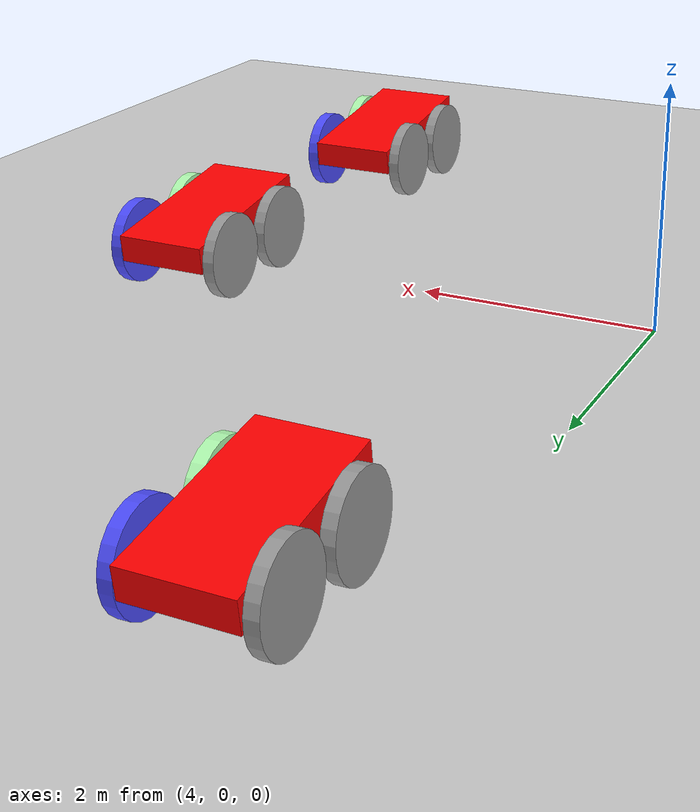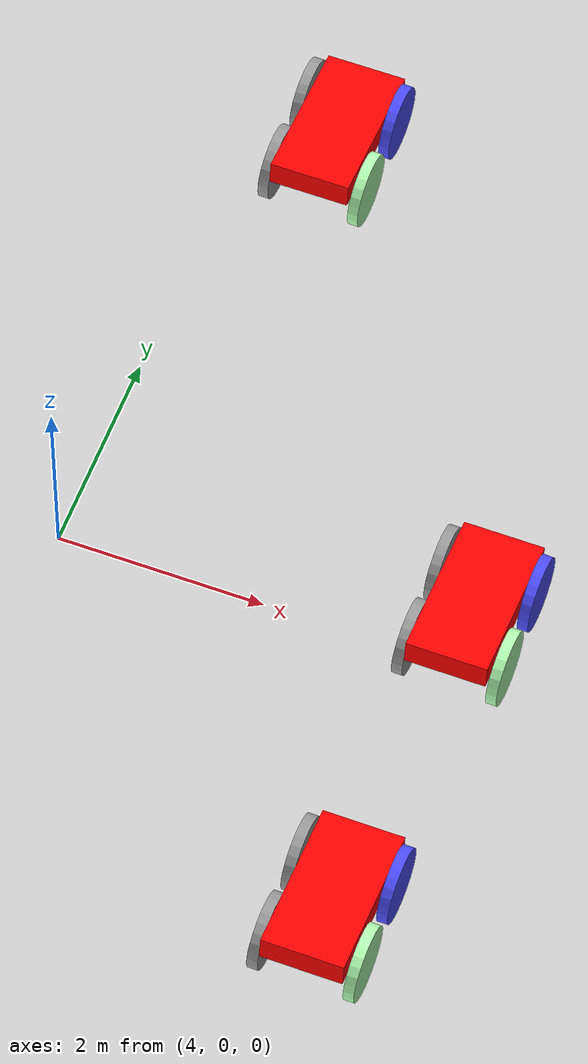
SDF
<sdf version="1.6">
 <world name="default">
  <model name="ground_plane">
   <static>1</static>
   <link name="link">
    <collision name="collision">
     <geometry><plane><normal>0 0 1</normal><size>100 100</size></plane></geometry>
     <surface><friction><ode><mu>100</mu><mu2>50</mu2></ode></friction></surface>
    </collision>
    <visual name="visual">
     <cast_shadows>0</cast_shadows>
     <geometry><plane><normal>0 0 1</normal><size>100 100</size></plane></geometry>
     <material>
      <script><uri>file://media/materials/scripts/gazebo.material</uri><name>Gazebo/Grey</name></script>
     </material>
    </visual>
   </link>
  </model>
  <model name="my_car2">
   <link name="link_0">
    <inertial>
     <mass>0.276053</mass>
     <inertia>
      <ixx>0.0553179</ixx>
      <ixy>0</ixy>
      <ixz>0</ixz>
      <iyy>0.0149267</iyy>
      <iyz>0</iyz>
      <izz>0.0677343</izz>
     </inertia>
    </inertial>
    <pose>0.341303 -0.303641 0.194258 0 -0 0</pose>
    <visual name="visual">
     <geometry><box><size>0.770868 1.533 0.233602</size></box></geometry>
     <material>
      <lighting>1</lighting>
      <script><uri>file://media/materials/scripts/gazebo.material</uri><name>Gazebo/Grey</name></script>
      <emissive>1 0 0 1</emissive>
      <diffuse>1 0 0 0</diffuse>
      <shader type="vertex"><normal_map>__default__</normal_map></shader>
      <ambient>0.3 0.3 0.3 1</ambient>
      <specular>1 0.01 0.01 1</specular>
     </material>
    </visual>
    <collision name="collision">
     <geometry><box><size>0.770868 1.533 0.233602</size></box></geometry>
     <surface>
      <friction>
       <ode><mu>1</mu><mu2>1</mu2><fdir1>0 0 0</fdir1><slip1>0</slip1><slip2>0</slip2></ode>
       <torsional>
        <coefficient>1</coefficient>
        <patch_radius>0</patch_radius>
        <surface_radius>0</surface_radius>
        <use_patch_radius>1</use_patch_radius>
        <ode><slip>0</slip></ode>
       </torsional>
      </friction>
      <bounce><restitution_coefficient>0</restitution_coefficient><threshold>1e+06</threshold></bounce>
      <contact>
       <collide_without_contact>0</collide_without_contact>
       <collide_without_contact_bitmask>1</collide_without_contact_bitmask>
       <collide_bitmask>1</collide_bitmask>
       <ode>
        <soft_cfm>0</soft_cfm>
        <soft_erp>0.2</soft_erp>
        <kp>1e+13</kp>
        <kd>1</kd>
        <max_vel>0.01</max_vel>
        <min_depth>0</min_depth>
       </ode>
       <bullet>
        <split_impulse>1</split_impulse>
        <split_impulse_penetration_threshold>-0.01</split_impulse_penetration_threshold>
        <soft_cfm>0</soft_cfm>
        <soft_erp>0.2</soft_erp>
        <kp>1e+13</kp>
        <kd>1</kd>
       </bullet>
      </contact>
     </surface>
    </collision>
   </link>
   <link name="link_1_clone">
    <inertial>
     <mass>0.0516188</mass>
     <inertia>
      <ixx>0.00169164</ixx>
      <ixy>0</ixy>
      <ixz>0</ixz>
      <iyy>0.00169164</iyy>
      <iyz>0</iyz>
      <izz>0.00329539</izz>
     </inertia>
    </inertial>
    <pose>0.787793 0.105537 0.097767 3.14159 1.54127 3.14159</pose>
    <visual name="visual">
     <geometry><cylinder><radius>0.357323</radius><length>0.101057</length></cylinder></geometry>
     <material>
      <lighting>1</lighting>
      <script><uri>file://media/materials/scripts/gazebo.material</uri><name>Gazebo/Grey</name></script>
      <shader type="vertex"><normal_map>__default__</normal_map></shader>
      <ambient>0.3 0.3 1 1</ambient>
      <diffuse>0.7 0.7 0.7 1</diffuse>
      <specular>0.01 0.01 0.01 1</specular>
      <emissive>0 0 0 1</emissive>
     </material>
    </visual>
    <collision name="collision">
     <geometry><cylinder><radius>0.357323</radius><length>0.101057</length></cylinder></geometry>
     <surface>
      <friction>
       <ode><mu>1</mu><mu2>1</mu2><fdir1>0 0 0</fdir1><slip1>0</slip1><slip2>0</slip2></ode>
       <torsional>
        <coefficient>1</coefficient>
        <patch_radius>0</patch_radius>
        <surface_radius>0</surface_radius>
        <use_patch_radius>1</use_patch_radius>
        <ode><slip>0</slip></ode>
       </torsional>
      </friction>
      <bounce><restitution_coefficient>0</restitution_coefficient><threshold>1e+06</threshold></bounce>
      <contact>
       <collide_without_contact>0</collide_without_contact>
       <collide_without_contact_bitmask>1</collide_without_contact_bitmask>
       <collide_bitmask>1</collide_bitmask>
       <ode>
        <soft_cfm>0</soft_cfm>
        <soft_erp>0.2</soft_erp>
        <kp>1e+13</kp>
        <kd>1</kd>
        <max_vel>0.01</max_vel>
        <min_depth>0</min_depth>
       </ode>
       <bullet>
        <split_impulse>1</split_impulse>
        <split_impulse_penetration_threshold>-0.01</split_impulse_penetration_threshold>
        <soft_cfm>0</soft_cfm>
        <soft_erp>0.2</soft_erp>
        <kp>1e+13</kp>
        <kd>1</kd>
       </bullet>
      </contact>
     </surface>
    </collision>
   </link>
   <link name="link_1_clone_0">
    <inertial>
     <mass>0.0516188</mass>
     <inertia>
      <ixx>0.00169164</ixx>
      <ixy>0</ixy>
      <ixz>0</ixz>
      <iyy>0.00169164</iyy>
      <iyz>0</iyz>
      <izz>0.00329539</izz>
     </inertia>
    </inertial>
    <pose>-0.105186 -0.712819 -0.024401 3.14159 1.54127 3.14159</pose>
    <visual name="visual">
     <geometry><cylinder><radius>0.357323</radius><length>0.101057</length></cylinder></geometry>
     <material>
      <lighting>1</lighting>
      <script><uri>file://media/materials/scripts/gazebo.material</uri><name>Gazebo/Grey</name></script>
      <shader type="vertex"><normal_map>__default__</normal_map></shader>
      <ambient>0.3 0.3 0.3 1</ambient>
      <diffuse>0.7 0.7 0.7 1</diffuse>
      <specular>0.01 0.01 1 1</specular>
      <emissive>0 0 0 1</emissive>
     </material>
    </visual>
    <collision name="collision">
     <geometry><cylinder><radius>0.357323</radius><length>0.101057</length></cylinder></geometry>
     <surface>
      <friction>
       <ode><mu>1</mu><mu2>1</mu2><fdir1>0 0 0</fdir1><slip1>0</slip1><slip2>0</slip2></ode>
       <torsional>
        <coefficient>1</coefficient>
        <patch_radius>0</patch_radius>
        <surface_radius>0</surface_radius>
        <use_patch_radius>1</use_patch_radius>
        <ode><slip>0</slip></ode>
       </torsional>
      </friction>
      <bounce><restitution_coefficient>0</restitution_coefficient><threshold>1e+06</threshold></bounce>
      <contact>
       <collide_without_contact>0</collide_without_contact>
       <collide_without_contact_bitmask>1</collide_without_contact_bitmask>
       <collide_bitmask>1</collide_bitmask>
       <ode>
        <soft_cfm>0</soft_cfm>
        <soft_erp>0.2</soft_erp>
        <kp>1e+13</kp>
        <kd>1</kd>
        <max_vel>0.01</max_vel>
        <min_depth>0</min_depth>
       </ode>
       <bullet>
        <split_impulse>1</split_impulse>
        <split_impulse_penetration_threshold>-0.01</split_impulse_penetration_threshold>
        <soft_cfm>0</soft_cfm>
        <soft_erp>0.2</soft_erp>
        <kp>1e+13</kp>
        <kd>1</kd>
       </bullet>
      </contact>
     </surface>
    </collision>
   </link>
   <link name="link_1_clone_1">
    <inertial>
     <mass>0.0516188</mass>
     <inertia>
      <ixx>0.00169164</ixx>
      <ixy>0</ixy>
      <ixz>0</ixz>
      <iyy>0.00169164</iyy>
      <iyz>0</iyz>
      <izz>0.00329539</izz>
     </inertia>
    </inertial>
    <pose>0.787793 -0.712819 -0.024401 3.14159 1.54127 3.14159</pose>
    <visual name="visual">
     <geometry><cylinder><radius>0.357323</radius><length>0.101057</length></cylinder></geometry>
     <material>
      <lighting>1</lighting>
      <script><uri>file://media/materials/scripts/gazebo.material</uri><name>Gazebo/Grey</name></script>
      <shader type="vertex"><normal_map>__default__</normal_map></shader>
      <ambient>0.3 1 0.3 1</ambient>
      <diffuse>0.7 1 0.7 1</diffuse>
      <specular>0.01 1 0.01 1</specular>
      <emissive>0 1 0 1</emissive>
     </material>
    </visual>
    <collision name="collision">
     <geometry><cylinder><radius>0.357323</radius><length>0.101057</length></cylinder></geometry>
     <surface>
      <friction>
       <ode><mu>1</mu><mu2>1</mu2><fdir1>0 0 0</fdir1><slip1>0</slip1><slip2>0</slip2></ode>
       <torsional>
        <coefficient>1</coefficient>
        <patch_radius>0</patch_radius>
        <surface_radius>0</surface_radius>
        <use_patch_radius>1</use_patch_radius>
        <ode><slip>0</slip></ode>
       </torsional>
      </friction>
      <bounce><restitution_coefficient>0</restitution_coefficient><threshold>1e+06</threshold></bounce>
      <contact>
       <collide_without_contact>0</collide_without_contact>
       <collide_without_contact_bitmask>1</collide_without_contact_bitmask>
       <collide_bitmask>1</collide_bitmask>
       <ode>
        <soft_cfm>0</soft_cfm>
        <soft_erp>0.2</soft_erp>
        <kp>1e+13</kp>
        <kd>1</kd>
        <max_vel>0.01</max_vel>
        <min_depth>0</min_depth>
       </ode>
       <bullet>
        <split_impulse>1</split_impulse>
        <split_impulse_penetration_threshold>-0.01</split_impulse_penetration_threshold>
        <soft_cfm>0</soft_cfm>
        <soft_erp>0.2</soft_erp>
        <kp>1e+13</kp>
        <kd>1</kd>
       </bullet>
      </contact>
     </surface>
    </collision>
   </link>
   <link name="link_1_clone_clone">
    <inertial>
     <mass>0.0516188</mass>
     <inertia>
      <ixx>0.00169164</ixx>
      <ixy>0</ixy>
      <ixz>0</ixz>
      <iyy>0.00169164</iyy>
      <iyz>0</iyz>
      <izz>0.00329539</izz>
     </inertia>
    </inertial>
    <pose>-0.105186 0.105537 0.097767 3.14159 1.54127 3.14159</pose>
    <visual name="visual">
     <geometry><cylinder><radius>0.357323</radius><length>0.101057</length></cylinder></geometry>
     <material>
      <lighting>1</lighting>
      <script><uri>file://media/materials/scripts/gazebo.material</uri><name>Gazebo/Grey</name></script>
      <shader type="vertex"><normal_map>__default__</normal_map></shader>
      <ambient>0.3 0.3 0.3 1</ambient>
      <diffuse>0.7 0.7 0.7 1</diffuse>
      <specular>0.01 1 0.01 1</specular>
      <emissive>0 1 0 1</emissive>
     </material>
    </visual>
    <collision name="collision">
     <geometry><cylinder><radius>0.357323</radius><length>0.101057</length></cylinder></geometry>
     <surface>
      <friction>
       <ode><mu>1</mu><mu2>1</mu2><fdir1>0 0 0</fdir1><slip1>0</slip1><slip2>0</slip2></ode>
       <torsional>
        <coefficient>1</coefficient>
        <patch_radius>0</patch_radius>
        <surface_radius>0</surface_radius>
        <use_patch_radius>1</use_patch_radius>
        <ode><slip>0</slip></ode>
       </torsional>
      </friction>
      <bounce><restitution_coefficient>0</restitution_coefficient><threshold>1e+06</threshold></bounce>
      <contact>
       <collide_without_contact>0</collide_without_contact>
       <collide_without_contact_bitmask>1</collide_without_contact_bitmask>
       <collide_bitmask>1</collide_bitmask>
       <ode>
        <soft_cfm>0</soft_cfm>
        <soft_erp>0.2</soft_erp>
        <kp>1e+13</kp>
        <kd>1</kd>
        <max_vel>0.01</max_vel>
        <min_depth>0</min_depth>
       </ode>
       <bullet>
        <split_impulse>1</split_impulse>
        <split_impulse_penetration_threshold>-0.01</split_impulse_penetration_threshold>
        <soft_cfm>0</soft_cfm>
        <soft_erp>0.2</soft_erp>
        <kp>1e+13</kp>
        <kd>1</kd>
       </bullet>
      </contact>
     </surface>
    </collision>
   </link>
   <joint name="link_0_JOINT_2" type="revolute">
    <parent>link_0</parent>
    <child>link_1_clone_1</child>
    <axis>
     <xyz>0 0 1</xyz>
     <use_parent_model_frame>0</use_parent_model_frame>
     <limit>
      <lower>-1.79769e+308</lower>
      <upper>1.79769e+308</upper>
      <effort>-1</effort>
      <velocity>-1</velocity>
     </limit>
     <dynamics>
      <spring_reference>0</spring_reference>
      <spring_stiffness>0</spring_stiffness>
      <damping>0</damping>
      <friction>0</friction>
     </dynamics>
    </axis>
    <physics>
     <ode><limit><cfm>0</cfm><erp>0.2</erp></limit><suspension><cfm>0</cfm><erp>0.2</erp></suspension></ode>
    </physics>
   </joint>
   <joint name="link_0_JOINT_3" type="revolute">
    <parent>link_0</parent>
    <child>link_1_clone</child>
    <axis>
     <xyz>0 0 1</xyz>
     <use_parent_model_frame>0</use_parent_model_frame>
     <limit>
      <lower>-1.79769e+308</lower>
      <upper>1.79769e+308</upper>
      <effort>-1</effort>
      <velocity>-1</velocity>
     </limit>
     <dynamics>
      <spring_reference>0</spring_reference>
      <spring_stiffness>0</spring_stiffness>
      <damping>0</damping>
      <friction>0</friction>
     </dynamics>
    </axis>
    <physics>
     <ode><limit><cfm>0</cfm><erp>0.2</erp></limit><suspension><cfm>0</cfm><erp>0.2</erp></suspension></ode>
    </physics>
   </joint>
   <joint name="link_0_JOINT_4" type="revolute">
    <parent>link_0</parent>
    <child>link_1_clone_0</child>
    <axis>
     <xyz>0 0 1</xyz>
     <use_parent_model_frame>0</use_parent_model_frame>
     <limit>
      <lower>-1.79769e+308</lower>
      <upper>1.79769e+308</upper>
      <effort>-1</effort>
      <velocity>-1</velocity>
     </limit>
     <dynamics>
      <spring_reference>0</spring_reference>
      <spring_stiffness>0</spring_stiffness>
      <damping>0</damping>
      <friction>0</friction>
     </dynamics>
    </axis>
    <physics>
     <ode><limit><cfm>0</cfm><erp>0.2</erp></limit><suspension><cfm>0</cfm><erp>0.2</erp></suspension></ode>
    </physics>
   </joint>
   <joint name="link_0_JOINT_6" type="revolute">
    <parent>link_0</parent>
    <child>link_1_clone_clone</child>
    <axis>
     <xyz>0 0 1</xyz>
     <use_parent_model_frame>0</use_parent_model_frame>
     <limit>
      <lower>-1.79769e+308</lower>
      <upper>1.79769e+308</upper>
      <effort>-1</effort>
      <velocity>-1</velocity>
     </limit>
     <dynamics>
      <spring_reference>0</spring_reference>
      <spring_stiffness>0</spring_stiffness>
      <damping>0</damping>
      <friction>0</friction>
     </dynamics>
    </axis>
    <physics>
     <ode><limit><cfm>0</cfm><erp>0.2</erp></limit><suspension><cfm>0</cfm><erp>0.2</erp></suspension></ode>
    </physics>
   </joint>
   <static>0</static>
   <pose>7.52934 0.666701 0.277533 -0.14819 -0 -0.000169</pose>
  </model>
  <model name="my_car2_clone">
   <link name="link_0">
    <inertial>
     <mass>0.276053</mass>
     <inertia>
      <ixx>0.0553179</ixx>
      <ixy>0</ixy>
      <ixz>0</ixz>
      <iyy>0.0149267</iyy>
      <iyz>0</iyz>
      <izz>0.0677343</izz>
     </inertia>
    </inertial>
    <pose>0.341303 -0.303641 0.194258 0 -0 0</pose>
    <visual name="visual">
     <geometry><box><size>0.770868 1.533 0.233602</size></box></geometry>
     <material>
      <lighting>1</lighting>
      <script><uri>file://media/materials/scripts/gazebo.material</uri><name>Gazebo/Grey</name></script>
      <emissive>1 0 0 1</emissive>
      <diffuse>1 0 0 0</diffuse>
      <shader type="vertex"><normal_map>__default__</normal_map></shader>
      <ambient>0.3 0.3 0.3 1</ambient>
      <specular>1 0.01 0.01 1</specular>
     </material>
    </visual>
    <collision name="collision">
     <geometry><box><size>0.770868 1.533 0.233602</size></box></geometry>
     <surface>
      <friction>
       <ode><mu>1</mu><mu2>1</mu2><fdir1>0 0 0</fdir1><slip1>0</slip1><slip2>0</slip2></ode>
       <torsional>
        <coefficient>1</coefficient>
        <patch_radius>0</patch_radius>
        <surface_radius>0</surface_radius>
        <use_patch_radius>1</use_patch_radius>
        <ode><slip>0</slip></ode>
       </torsional>
      </friction>
      <bounce><restitution_coefficient>0</restitution_coefficient><threshold>1e+06</threshold></bounce>
      <contact>
       <collide_without_contact>0</collide_without_contact>
       <collide_without_contact_bitmask>1</collide_without_contact_bitmask>
       <collide_bitmask>1</collide_bitmask>
       <ode>
        <soft_cfm>0</soft_cfm>
        <soft_erp>0.2</soft_erp>
        <kp>1e+13</kp>
        <kd>1</kd>
        <max_vel>0.01</max_vel>
        <min_depth>0</min_depth>
       </ode>
       <bullet>
        <split_impulse>1</split_impulse>
        <split_impulse_penetration_threshold>-0.01</split_impulse_penetration_threshold>
        <soft_cfm>0</soft_cfm>
        <soft_erp>0.2</soft_erp>
        <kp>1e+13</kp>
        <kd>1</kd>
       </bullet>
      </contact>
     </surface>
    </collision>
   </link>
   <link name="link_1_clone">
    <inertial>
     <mass>0.0516188</mass>
     <inertia>
      <ixx>0.00169164</ixx>
      <ixy>0</ixy>
      <ixz>0</ixz>
      <iyy>0.00169164</iyy>
      <iyz>0</iyz>
      <izz>0.00329539</izz>
     </inertia>
    </inertial>
    <pose>0.787793 0.105537 0.097767 3.14159 1.54127 3.14159</pose>
    <visual name="visual">
     <geometry><cylinder><radius>0.357323</radius><length>0.101057</length></cylinder></geometry>
     <material>
      <lighting>1</lighting>
      <script><uri>file://media/materials/scripts/gazebo.material</uri><name>Gazebo/Grey</name></script>
      <shader type="vertex"><normal_map>__default__</normal_map></shader>
      <ambient>0.3 0.3 1 1</ambient>
      <diffuse>0.7 0.7 0.7 1</diffuse>
      <specular>0.01 0.01 0.01 1</specular>
      <emissive>0 0 0 1</emissive>
     </material>
    </visual>
    <collision name="collision">
     <geometry><cylinder><radius>0.357323</radius><length>0.101057</length></cylinder></geometry>
     <surface>
      <friction>
       <ode><mu>1</mu><mu2>1</mu2><fdir1>0 0 0</fdir1><slip1>0</slip1><slip2>0</slip2></ode>
       <torsional>
        <coefficient>1</coefficient>
        <patch_radius>0</patch_radius>
        <surface_radius>0</surface_radius>
        <use_patch_radius>1</use_patch_radius>
        <ode><slip>0</slip></ode>
       </torsional>
      </friction>
      <bounce><restitution_coefficient>0</restitution_coefficient><threshold>1e+06</threshold></bounce>
      <contact>
       <collide_without_contact>0</collide_without_contact>
       <collide_without_contact_bitmask>1</collide_without_contact_bitmask>
       <collide_bitmask>1</collide_bitmask>
       <ode>
        <soft_cfm>0</soft_cfm>
        <soft_erp>0.2</soft_erp>
        <kp>1e+13</kp>
        <kd>1</kd>
        <max_vel>0.01</max_vel>
        <min_depth>0</min_depth>
       </ode>
       <bullet>
        <split_impulse>1</split_impulse>
        <split_impulse_penetration_threshold>-0.01</split_impulse_penetration_threshold>
        <soft_cfm>0</soft_cfm>
        <soft_erp>0.2</soft_erp>
        <kp>1e+13</kp>
        <kd>1</kd>
       </bullet>
      </contact>
     </surface>
    </collision>
   </link>
   <link name="link_1_clone_0">
    <inertial>
     <mass>0.0516188</mass>
     <inertia>
      <ixx>0.00169164</ixx>
      <ixy>0</ixy>
      <ixz>0</ixz>
      <iyy>0.00169164</iyy>
      <iyz>0</iyz>
      <izz>0.00329539</izz>
     </inertia>
    </inertial>
    <pose>-0.105186 -0.712819 -0.024401 3.14159 1.54127 3.14159</pose>
    <visual name="visual">
     <geometry><cylinder><radius>0.357323</radius><length>0.101057</length></cylinder></geometry>
     <material>
      <lighting>1</lighting>
      <script><uri>file://media/materials/scripts/gazebo.material</uri><name>Gazebo/Grey</name></script>
      <shader type="vertex"><normal_map>__default__</normal_map></shader>
      <ambient>0.3 0.3 0.3 1</ambient>
      <diffuse>0.7 0.7 0.7 1</diffuse>
      <specular>0.01 0.01 1 1</specular>
      <emissive>0 0 0 1</emissive>
     </material>
    </visual>
    <collision name="collision">
     <geometry><cylinder><radius>0.357323</radius><length>0.101057</length></cylinder></geometry>
     <surface>
      <friction>
       <ode><mu>1</mu><mu2>1</mu2><fdir1>0 0 0</fdir1><slip1>0</slip1><slip2>0</slip2></ode>
       <torsional>
        <coefficient>1</coefficient>
        <patch_radius>0</patch_radius>
        <surface_radius>0</surface_radius>
        <use_patch_radius>1</use_patch_radius>
        <ode><slip>0</slip></ode>
       </torsional>
      </friction>
      <bounce><restitution_coefficient>0</restitution_coefficient><threshold>1e+06</threshold></bounce>
      <contact>
       <collide_without_contact>0</collide_without_contact>
       <collide_without_contact_bitmask>1</collide_without_contact_bitmask>
       <collide_bitmask>1</collide_bitmask>
       <ode>
        <soft_cfm>0</soft_cfm>
        <soft_erp>0.2</soft_erp>
        <kp>1e+13</kp>
        <kd>1</kd>
        <max_vel>0.01</max_vel>
        <min_depth>0</min_depth>
       </ode>
       <bullet>
        <split_impulse>1</split_impulse>
        <split_impulse_penetration_threshold>-0.01</split_impulse_penetration_threshold>
        <soft_cfm>0</soft_cfm>
        <soft_erp>0.2</soft_erp>
        <kp>1e+13</kp>
        <kd>1</kd>
       </bullet>
      </contact>
     </surface>
    </collision>
   </link>
   <link name="link_1_clone_1">
    <inertial>
     <mass>0.0516188</mass>
     <inertia>
      <ixx>0.00169164</ixx>
      <ixy>0</ixy>
      <ixz>0</ixz>
      <iyy>0.00169164</iyy>
      <iyz>0</iyz>
      <izz>0.00329539</izz>
     </inertia>
    </inertial>
    <pose>0.787793 -0.712819 -0.024401 3.14159 1.54127 3.14159</pose>
    <visual name="visual">
     <geometry><cylinder><radius>0.357323</radius><length>0.101057</length></cylinder></geometry>
     <material>
      <lighting>1</lighting>
      <script><uri>file://media/materials/scripts/gazebo.material</uri><name>Gazebo/Grey</name></script>
      <shader type="vertex"><normal_map>__default__</normal_map></shader>
      <ambient>0.3 1 0.3 1</ambient>
      <diffuse>0.7 1 0.7 1</diffuse>
      <specular>0.01 1 0.01 1</specular>
      <emissive>0 1 0 1</emissive>
     </material>
    </visual>
    <collision name="collision">
     <geometry><cylinder><radius>0.357323</radius><length>0.101057</length></cylinder></geometry>
     <surface>
      <friction>
       <ode><mu>1</mu><mu2>1</mu2><fdir1>0 0 0</fdir1><slip1>0</slip1><slip2>0</slip2></ode>
       <torsional>
        <coefficient>1</coefficient>
        <patch_radius>0</patch_radius>
        <surface_radius>0</surface_radius>
        <use_patch_radius>1</use_patch_radius>
        <ode><slip>0</slip></ode>
       </torsional>
      </friction>
      <bounce><restitution_coefficient>0</restitution_coefficient><threshold>1e+06</threshold></bounce>
      <contact>
       <collide_without_contact>0</collide_without_contact>
       <collide_without_contact_bitmask>1</collide_without_contact_bitmask>
       <collide_bitmask>1</collide_bitmask>
       <ode>
        <soft_cfm>0</soft_cfm>
        <soft_erp>0.2</soft_erp>
        <kp>1e+13</kp>
        <kd>1</kd>
        <max_vel>0.01</max_vel>
        <min_depth>0</min_depth>
       </ode>
       <bullet>
        <split_impulse>1</split_impulse>
        <split_impulse_penetration_threshold>-0.01</split_impulse_penetration_threshold>
        <soft_cfm>0</soft_cfm>
        <soft_erp>0.2</soft_erp>
        <kp>1e+13</kp>
        <kd>1</kd>
       </bullet>
      </contact>
     </surface>
    </collision>
   </link>
   <link name="link_1_clone_clone">
    <inertial>
     <mass>0.0516188</mass>
     <inertia>
      <ixx>0.00169164</ixx>
      <ixy>0</ixy>
      <ixz>0</ixz>
      <iyy>0.00169164</iyy>
      <iyz>0</iyz>
      <izz>0.00329539</izz>
     </inertia>
    </inertial>
    <pose>-0.105186 0.105537 0.097767 3.14159 1.54127 3.14159</pose>
    <visual name="visual">
     <geometry><cylinder><radius>0.357323</radius><length>0.101057</length></cylinder></geometry>
     <material>
      <lighting>1</lighting>
      <script><uri>file://media/materials/scripts/gazebo.material</uri><name>Gazebo/Grey</name></script>
      <shader type="vertex"><normal_map>__default__</normal_map></shader>
      <ambient>0.3 0.3 0.3 1</ambient>
      <diffuse>0.7 0.7 0.7 1</diffuse>
      <specular>0.01 1 0.01 1</specular>
      <emissive>0 1 0 1</emissive>
     </material>
    </visual>
    <collision name="collision">
     <geometry><cylinder><radius>0.357323</radius><length>0.101057</length></cylinder></geometry>
     <surface>
      <friction>
       <ode><mu>1</mu><mu2>1</mu2><fdir1>0 0 0</fdir1><slip1>0</slip1><slip2>0</slip2></ode>
       <torsional>
        <coefficient>1</coefficient>
        <patch_radius>0</patch_radius>
        <surface_radius>0</surface_radius>
        <use_patch_radius>1</use_patch_radius>
        <ode><slip>0</slip></ode>
       </torsional>
      </friction>
      <bounce><restitution_coefficient>0</restitution_coefficient><threshold>1e+06</threshold></bounce>
      <contact>
       <collide_without_contact>0</collide_without_contact>
       <collide_without_contact_bitmask>1</collide_without_contact_bitmask>
       <collide_bitmask>1</collide_bitmask>
       <ode>
        <soft_cfm>0</soft_cfm>
        <soft_erp>0.2</soft_erp>
        <kp>1e+13</kp>
        <kd>1</kd>
        <max_vel>0.01</max_vel>
        <min_depth>0</min_depth>
       </ode>
       <bullet>
        <split_impulse>1</split_impulse>
        <split_impulse_penetration_threshold>-0.01</split_impulse_penetration_threshold>
        <soft_cfm>0</soft_cfm>
        <soft_erp>0.2</soft_erp>
        <kp>1e+13</kp>
        <kd>1</kd>
       </bullet>
      </contact>
     </surface>
    </collision>
   </link>
   <joint name="link_0_JOINT_2" type="revolute">
    <parent>link_0</parent>
    <child>link_1_clone_1</child>
    <axis>
     <xyz>0 0 1</xyz>
     <use_parent_model_frame>0</use_parent_model_frame>
     <limit>
      <lower>-1.79769e+308</lower>
      <upper>1.79769e+308</upper>
      <effort>-1</effort>
      <velocity>-1</velocity>
     </limit>
     <dynamics>
      <spring_reference>0</spring_reference>
      <spring_stiffness>0</spring_stiffness>
      <damping>0</damping>
      <friction>0</friction>
     </dynamics>
    </axis>
    <physics>
     <ode><limit><cfm>0</cfm><erp>0.2</erp></limit><suspension><cfm>0</cfm><erp>0.2</erp></suspension></ode>
    </physics>
   </joint>
   <joint name="link_0_JOINT_3" type="revolute">
    <parent>link_0</parent>
    <child>link_1_clone</child>
    <axis>
     <xyz>0 0 1</xyz>
     <use_parent_model_frame>0</use_parent_model_frame>
     <limit>
      <lower>-1.79769e+308</lower>
      <upper>1.79769e+308</upper>
      <effort>-1</effort>
      <velocity>-1</velocity>
     </limit>
     <dynamics>
      <spring_reference>0</spring_reference>
      <spring_stiffness>0</spring_stiffness>
      <damping>0</damping>
      <friction>0</friction>
     </dynamics>
    </axis>
    <physics>
     <ode><limit><cfm>0</cfm><erp>0.2</erp></limit><suspension><cfm>0</cfm><erp>0.2</erp></suspension></ode>
    </physics>
   </joint>
   <joint name="link_0_JOINT_4" type="revolute">
    <parent>link_0</parent>
    <child>link_1_clone_0</child>
    <axis>
     <xyz>0 0 1</xyz>
     <use_parent_model_frame>0</use_parent_model_frame>
     <limit>
      <lower>-1.79769e+308</lower>
      <upper>1.79769e+308</upper>
      <effort>-1</effort>
      <velocity>-1</velocity>
     </limit>
     <dynamics>
      <spring_reference>0</spring_reference>
      <spring_stiffness>0</spring_stiffness>
      <damping>0</damping>
      <friction>0</friction>
     </dynamics>
    </axis>
    <physics>
     <ode><limit><cfm>0</cfm><erp>0.2</erp></limit><suspension><cfm>0</cfm><erp>0.2</erp></suspension></ode>
    </physics>
   </joint>
   <joint name="link_0_JOINT_6" type="revolute">
    <parent>link_0</parent>
    <child>link_1_clone_clone</child>
    <axis>
     <xyz>0 0 1</xyz>
     <use_parent_model_frame>0</use_parent_model_frame>
     <limit>
      <lower>-1.79769e+308</lower>
      <upper>1.79769e+308</upper>
      <effort>-1</effort>
      <velocity>-1</velocity>
     </limit>
     <dynamics>
      <spring_reference>0</spring_reference>
      <spring_stiffness>0</spring_stiffness>
      <damping>0</damping>
      <friction>0</friction>
     </dynamics>
    </axis>
    <physics>
     <ode><limit><cfm>0</cfm><erp>0.2</erp></limit><suspension><cfm>0</cfm><erp>0.2</erp></suspension></ode>
    </physics>
   </joint>
   <static>0</static>
   <pose>7.40506 -2.57878 0.277525 -0.14819 -1e-05 -0.0001</pose>
  </model>
  <model name="my_car2_clone_0">
   <link name="link_0">
    <inertial>
     <mass>0.276053</mass>
     <inertia>
      <ixx>0.0553179</ixx>
      <ixy>0</ixy>
      <ixz>0</ixz>
      <iyy>0.0149267</iyy>
      <iyz>0</iyz>
      <izz>0.0677343</izz>
     </inertia>
    </inertial>
    <pose>0.341303 -0.303641 0.194258 0 -0 0</pose>
    <visual name="visual">
     <geometry><box><size>0.770868 1.533 0.233602</size></box></geometry>
     <material>
      <lighting>1</lighting>
      <script><uri>file://media/materials/scripts/gazebo.material</uri><name>Gazebo/Grey</name></script>
      <emissive>1 0 0 1</emissive>
      <diffuse>1 0 0 0</diffuse>
      <shader type="vertex"><normal_map>__default__</normal_map></shader>
      <ambient>0.3 0.3 0.3 1</ambient>
      <specular>1 0.01 0.01 1</specular>
     </material>
    </visual>
    <collision name="collision">
     <geometry><box><size>0.770868 1.533 0.233602</size></box></geometry>
     <surface>
      <friction>
       <ode><mu>1</mu><mu2>1</mu2><fdir1>0 0 0</fdir1><slip1>0</slip1><slip2>0</slip2></ode>
       <torsional>
        <coefficient>1</coefficient>
        <patch_radius>0</patch_radius>
        <surface_radius>0</surface_radius>
        <use_patch_radius>1</use_patch_radius>
        <ode><slip>0</slip></ode>
       </torsional>
      </friction>
      <bounce><restitution_coefficient>0</restitution_coefficient><threshold>1e+06</threshold></bounce>
      <contact>
       <collide_without_contact>0</collide_without_contact>
       <collide_without_contact_bitmask>1</collide_without_contact_bitmask>
       <collide_bitmask>1</collide_bitmask>
       <ode>
        <soft_cfm>0</soft_cfm>
        <soft_erp>0.2</soft_erp>
        <kp>1e+13</kp>
        <kd>1</kd>
        <max_vel>0.01</max_vel>
        <min_depth>0</min_depth>
       </ode>
       <bullet>
        <split_impulse>1</split_impulse>
        <split_impulse_penetration_threshold>-0.01</split_impulse_penetration_threshold>
        <soft_cfm>0</soft_cfm>
        <soft_erp>0.2</soft_erp>
        <kp>1e+13</kp>
        <kd>1</kd>
       </bullet>
      </contact>
     </surface>
    </collision>
   </link>
   <link name="link_1_clone">
    <inertial>
     <mass>0.0516188</mass>
     <inertia>
      <ixx>0.00169164</ixx>
      <ixy>0</ixy>
      <ixz>0</ixz>
      <iyy>0.00169164</iyy>
      <iyz>0</iyz>
      <izz>0.00329539</izz>
     </inertia>
    </inertial>
    <pose>0.787793 0.105537 0.097767 3.14159 1.54127 3.14159</pose>
    <visual name="visual">
     <geometry><cylinder><radius>0.357323</radius><length>0.101057</length></cylinder></geometry>
     <material>
      <lighting>1</lighting>
      <script><uri>file://media/materials/scripts/gazebo.material</uri><name>Gazebo/Grey</name></script>
      <shader type="vertex"><normal_map>__default__</normal_map></shader>
      <ambient>0.3 0.3 1 1</ambient>
      <diffuse>0.7 0.7 0.7 1</diffuse>
      <specular>0.01 0.01 0.01 1</specular>
      <emissive>0 0 0 1</emissive>
     </material>
    </visual>
    <collision name="collision">
     <geometry><cylinder><radius>0.357323</radius><length>0.101057</length></cylinder></geometry>
     <surface>
      <friction>
       <ode><mu>1</mu><mu2>1</mu2><fdir1>0 0 0</fdir1><slip1>0</slip1><slip2>0</slip2></ode>
       <torsional>
        <coefficient>1</coefficient>
        <patch_radius>0</patch_radius>
        <surface_radius>0</surface_radius>
        <use_patch_radius>1</use_patch_radius>
        <ode><slip>0</slip></ode>
       </torsional>
      </friction>
      <bounce><restitution_coefficient>0</restitution_coefficient><threshold>1e+06</threshold></bounce>
      <contact>
       <collide_without_contact>0</collide_without_contact>
       <collide_without_contact_bitmask>1</collide_without_contact_bitmask>
       <collide_bitmask>1</collide_bitmask>
       <ode>
        <soft_cfm>0</soft_cfm>
        <soft_erp>0.2</soft_erp>
        <kp>1e+13</kp>
        <kd>1</kd>
        <max_vel>0.01</max_vel>
        <min_depth>0</min_depth>
       </ode>
       <bullet>
        <split_impulse>1</split_impulse>
        <split_impulse_penetration_threshold>-0.01</split_impulse_penetration_threshold>
        <soft_cfm>0</soft_cfm>
        <soft_erp>0.2</soft_erp>
        <kp>1e+13</kp>
        <kd>1</kd>
       </bullet>
      </contact>
     </surface>
    </collision>
   </link>
   <link name="link_1_clone_0">
    <inertial>
     <mass>0.0516188</mass>
     <inertia>
      <ixx>0.00169164</ixx>
      <ixy>0</ixy>
      <ixz>0</ixz>
      <iyy>0.00169164</iyy>
      <iyz>0</iyz>
      <izz>0.00329539</izz>
     </inertia>
    </inertial>
    <pose>-0.105186 -0.712819 -0.024401 3.14159 1.54127 3.14159</pose>
    <visual name="visual">
     <geometry><cylinder><radius>0.357323</radius><length>0.101057</length></cylinder></geometry>
     <material>
      <lighting>1</lighting>
      <script><uri>file://media/materials/scripts/gazebo.material</uri><name>Gazebo/Grey</name></script>
      <shader type="vertex"><normal_map>__default__</normal_map></shader>
      <ambient>0.3 0.3 0.3 1</ambient>
      <diffuse>0.7 0.7 0.7 1</diffuse>
      <specular>0.01 0.01 1 1</specular>
      <emissive>0 0 0 1</emissive>
     </material>
    </visual>
    <collision name="collision">
     <geometry><cylinder><radius>0.357323</radius><length>0.101057</length></cylinder></geometry>
     <surface>
      <friction>
       <ode><mu>1</mu><mu2>1</mu2><fdir1>0 0 0</fdir1><slip1>0</slip1><slip2>0</slip2></ode>
       <torsional>
        <coefficient>1</coefficient>
        <patch_radius>0</patch_radius>
        <surface_radius>0</surface_radius>
        <use_patch_radius>1</use_patch_radius>
        <ode><slip>0</slip></ode>
       </torsional>
      </friction>
      <bounce><restitution_coefficient>0</restitution_coefficient><threshold>1e+06</threshold></bounce>
      <contact>
       <collide_without_contact>0</collide_without_contact>
       <collide_without_contact_bitmask>1</collide_without_contact_bitmask>
       <collide_bitmask>1</collide_bitmask>
       <ode>
        <soft_cfm>0</soft_cfm>
        <soft_erp>0.2</soft_erp>
        <kp>1e+13</kp>
        <kd>1</kd>
        <max_vel>0.01</max_vel>
        <min_depth>0</min_depth>
       </ode>
       <bullet>
        <split_impulse>1</split_impulse>
        <split_impulse_penetration_threshold>-0.01</split_impulse_penetration_threshold>
        <soft_cfm>0</soft_cfm>
        <soft_erp>0.2</soft_erp>
        <kp>1e+13</kp>
        <kd>1</kd>
       </bullet>
      </contact>
     </surface>
    </collision>
   </link>
   <link name="link_1_clone_1">
    <inertial>
     <mass>0.0516188</mass>
     <inertia>
      <ixx>0.00169164</ixx>
      <ixy>0</ixy>
      <ixz>0</ixz>
      <iyy>0.00169164</iyy>
      <iyz>0</iyz>
      <izz>0.00329539</izz>
     </inertia>
    </inertial>
    <pose>0.787793 -0.712819 -0.024401 3.14159 1.54127 3.14159</pose>
    <visual name="visual">
     <geometry><cylinder><radius>0.357323</radius><length>0.101057</length></cylinder></geometry>
     <material>
      <lighting>1</lighting>
      <script><uri>file://media/materials/scripts/gazebo.material</uri><name>Gazebo/Grey</name></script>
      <shader type="vertex"><normal_map>__default__</normal_map></shader>
      <ambient>0.3 1 0.3 1</ambient>
      <diffuse>0.7 1 0.7 1</diffuse>
      <specular>0.01 1 0.01 1</specular>
      <emissive>0 1 0 1</emissive>
     </material>
    </visual>
    <collision name="collision">
     <geometry><cylinder><radius>0.357323</radius><length>0.101057</length></cylinder></geometry>
     <surface>
      <friction>
       <ode><mu>1</mu><mu2>1</mu2><fdir1>0 0 0</fdir1><slip1>0</slip1><slip2>0</slip2></ode>
       <torsional>
        <coefficient>1</coefficient>
        <patch_radius>0</patch_radius>
        <surface_radius>0</surface_radius>
        <use_patch_radius>1</use_patch_radius>
        <ode><slip>0</slip></ode>
       </torsional>
      </friction>
      <bounce><restitution_coefficient>0</restitution_coefficient><threshold>1e+06</threshold></bounce>
      <contact>
       <collide_without_contact>0</collide_without_contact>
       <collide_without_contact_bitmask>1</collide_without_contact_bitmask>
       <collide_bitmask>1</collide_bitmask>
       <ode>
        <soft_cfm>0</soft_cfm>
        <soft_erp>0.2</soft_erp>
        <kp>1e+13</kp>
        <kd>1</kd>
        <max_vel>0.01</max_vel>
        <min_depth>0</min_depth>
       </ode>
       <bullet>
        <split_impulse>1</split_impulse>
        <split_impulse_penetration_threshold>-0.01</split_impulse_penetration_threshold>
        <soft_cfm>0</soft_cfm>
        <soft_erp>0.2</soft_erp>
        <kp>1e+13</kp>
        <kd>1</kd>
       </bullet>
      </contact>
     </surface>
    </collision>
   </link>
   <link name="link_1_clone_clone">
    <inertial>
     <mass>0.0516188</mass>
     <inertia>
      <ixx>0.00169164</ixx>
      <ixy>0</ixy>
      <ixz>0</ixz>
      <iyy>0.00169164</iyy>
      <iyz>0</iyz>
      <izz>0.00329539</izz>
     </inertia>
    </inertial>
    <pose>-0.105186 0.105537 0.097767 3.14159 1.54127 3.14159</pose>
    <visual name="visual">
     <geometry><cylinder><radius>0.357323</radius><length>0.101057</length></cylinder></geometry>
     <material>
      <lighting>1</lighting>
      <script><uri>file://media/materials/scripts/gazebo.material</uri><name>Gazebo/Grey</name></script>
      <shader type="vertex"><normal_map>__default__</normal_map></shader>
      <ambient>0.3 0.3 0.3 1</ambient>
      <diffuse>0.7 0.7 0.7 1</diffuse>
      <specular>0.01 1 0.01 1</specular>
      <emissive>0 1 0 1</emissive>
     </material>
    </visual>
    <collision name="collision">
     <geometry><cylinder><radius>0.357323</radius><length>0.101057</length></cylinder></geometry>
     <surface>
      <friction>
       <ode><mu>1</mu><mu2>1</mu2><fdir1>0 0 0</fdir1><slip1>0</slip1><slip2>0</slip2></ode>
       <torsional>
        <coefficient>1</coefficient>
        <patch_radius>0</patch_radius>
        <surface_radius>0</surface_radius>
        <use_patch_radius>1</use_patch_radius>
        <ode><slip>0</slip></ode>
       </torsional>
      </friction>
      <bounce><restitution_coefficient>0</restitution_coefficient><threshold>1e+06</threshold></bounce>
      <contact>
       <collide_without_contact>0</collide_without_contact>
       <collide_without_contact_bitmask>1</collide_without_contact_bitmask>
       <collide_bitmask>1</collide_bitmask>
       <ode>
        <soft_cfm>0</soft_cfm>
        <soft_erp>0.2</soft_erp>
        <kp>1e+13</kp>
        <kd>1</kd>
        <max_vel>0.01</max_vel>
        <min_depth>0</min_depth>
       </ode>
       <bullet>
        <split_impulse>1</split_impulse>
        <split_impulse_penetration_threshold>-0.01</split_impulse_penetration_threshold>
        <soft_cfm>0</soft_cfm>
        <soft_erp>0.2</soft_erp>
        <kp>1e+13</kp>
        <kd>1</kd>
       </bullet>
      </contact>
     </surface>
    </collision>
   </link>
   <joint name="link_0_JOINT_2" type="revolute">
    <parent>link_0</parent>
    <child>link_1_clone_1</child>
    <axis>
     <xyz>0 0 1</xyz>
     <use_parent_model_frame>0</use_parent_model_frame>
     <limit>
      <lower>-1.79769e+308</lower>
      <upper>1.79769e+308</upper>
      <effort>-1</effort>
      <velocity>-1</velocity>
     </limit>
     <dynamics>
      <spring_reference>0</spring_reference>
      <spring_stiffness>0</spring_stiffness>
      <damping>0</damping>
      <friction>0</friction>
     </dynamics>
    </axis>
    <physics>
     <ode><limit><cfm>0</cfm><erp>0.2</erp></limit><suspension><cfm>0</cfm><erp>0.2</erp></suspension></ode>
    </physics>
   </joint>
   <joint name="link_0_JOINT_3" type="revolute">
    <parent>link_0</parent>
    <child>link_1_clone</child>
    <axis>
     <xyz>0 0 1</xyz>
     <use_parent_model_frame>0</use_parent_model_frame>
     <limit>
      <lower>-1.79769e+308</lower>
      <upper>1.79769e+308</upper>
      <effort>-1</effort>
      <velocity>-1</velocity>
     </limit>
     <dynamics>
      <spring_reference>0</spring_reference>
      <spring_stiffness>0</spring_stiffness>
      <damping>0</damping>
      <friction>0</friction>
     </dynamics>
    </axis>
    <physics>
     <ode><limit><cfm>0</cfm><erp>0.2</erp></limit><suspension><cfm>0</cfm><erp>0.2</erp></suspension></ode>
    </physics>
   </joint>
   <joint name="link_0_JOINT_4" type="revolute">
    <parent>link_0</parent>
    <child>link_1_clone_0</child>
    <axis>
     <xyz>0 0 1</xyz>
     <use_parent_model_frame>0</use_parent_model_frame>
     <limit>
      <lower>-1.79769e+308</lower>
      <upper>1.79769e+308</upper>
      <effort>-1</effort>
      <velocity>-1</velocity>
     </limit>
     <dynamics>
      <spring_reference>0</spring_reference>
      <spring_stiffness>0</spring_stiffness>
      <damping>0</damping>
      <friction>0</friction>
     </dynamics>
    </axis>
    <physics>
     <ode><limit><cfm>0</cfm><erp>0.2</erp></limit><suspension><cfm>0</cfm><erp>0.2</erp></suspension></ode>
    </physics>
   </joint>
   <joint name="link_0_JOINT_6" type="revolute">
    <parent>link_0</parent>
    <child>link_1_clone_clone</child>
    <axis>
     <xyz>0 0 1</xyz>
     <use_parent_model_frame>0</use_parent_model_frame>
     <limit>
      <lower>-1.79769e+308</lower>
      <upper>1.79769e+308</upper>
      <effort>-1</effort>
      <velocity>-1</velocity>
     </limit>
     <dynamics>
      <spring_reference>0</spring_reference>
      <spring_stiffness>0</spring_stiffness>
      <damping>0</damping>
      <friction>0</friction>
     </dynamics>
    </axis>
    <physics>
     <ode><limit><cfm>0</cfm><erp>0.2</erp></limit><suspension><cfm>0</cfm><erp>0.2</erp></suspension></ode>
    </physics>
   </joint>
   <static>0</static>
   <pose>4.53766 5.09512 0.277533 -0.14819 -0 -1.6e-05</pose>
  </model>
 </world>
</sdf>
